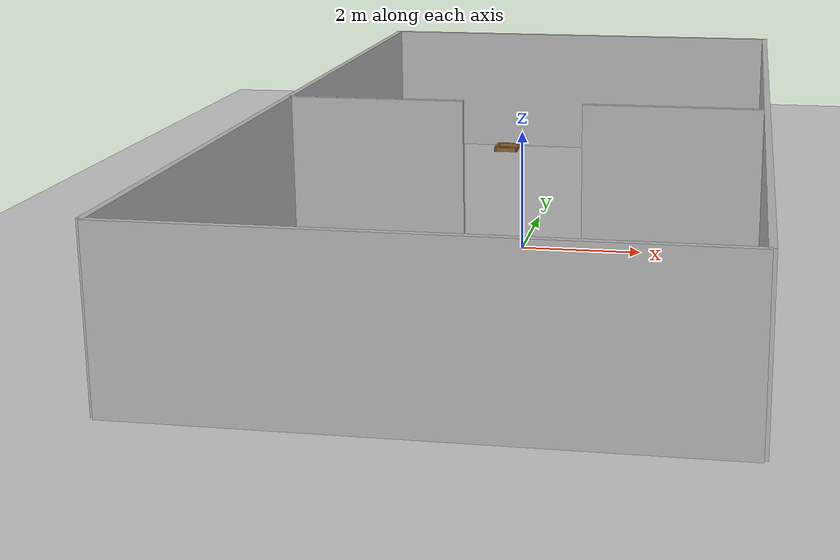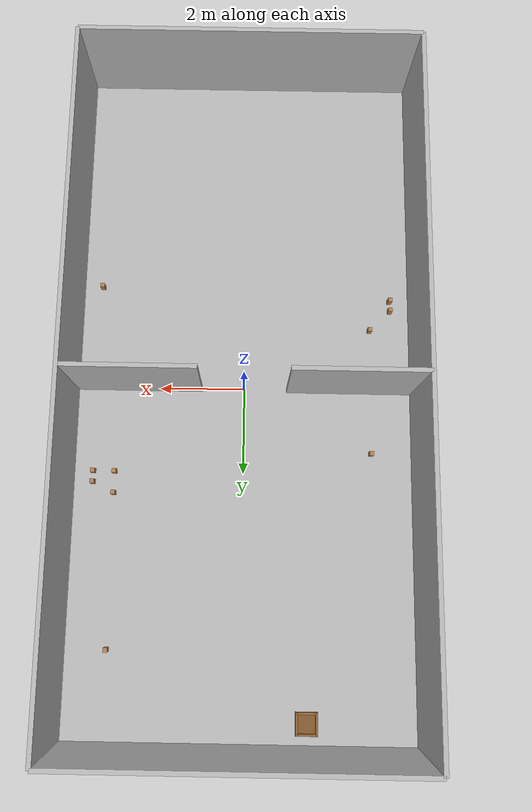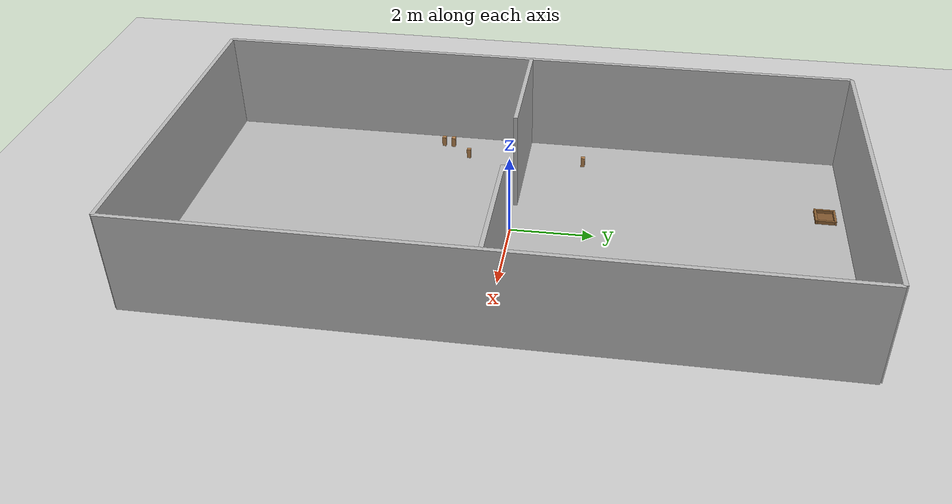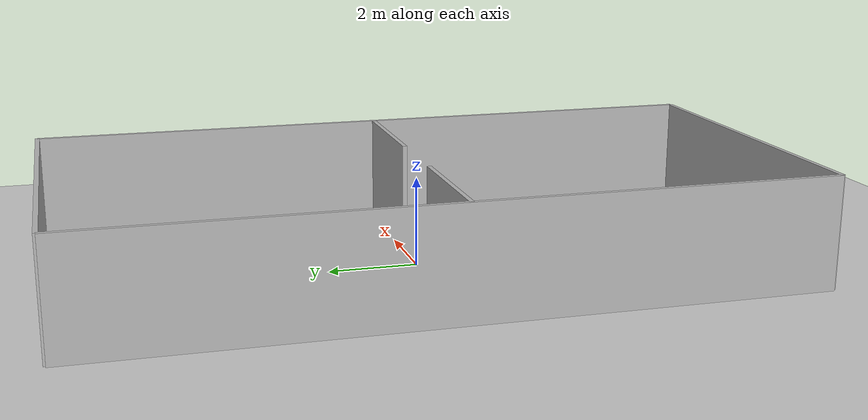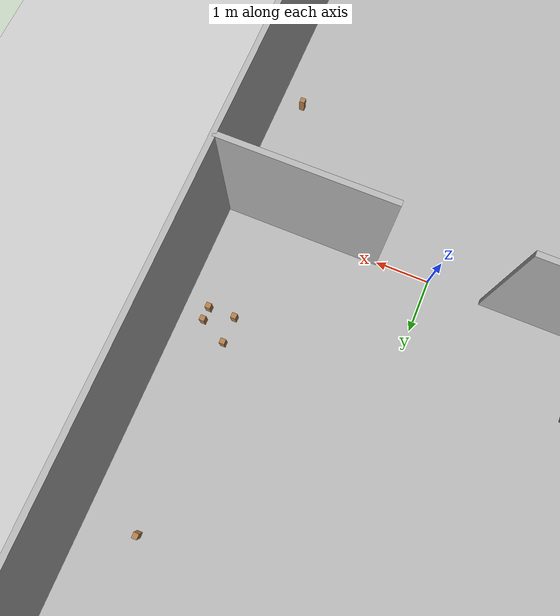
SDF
<sdf version="1.6">
 <world name="sensor_empty">
  <physics name="1ms" type="ignored">
   <max_step_size>0.001</max_step_size>
   <real_time_factor>1.0</real_time_factor>
  </physics>
  <include><name>obs2</name><uri>model://Woodcube10cm</uri><pose>3.0 2.5 0.0 0 0 1.57</pose></include>
  <include><name>obs3</name><uri>model://Woodcube10cm</uri><pose>3.5 -2.5 0.0 0 0 1.57</pose></include>
  <include><name>obs4</name><uri>model://Woodcube10cm</uri><pose>-3.0 1.5 0.0 0 0 1.57</pose></include>
  <include><name>obs5</name><uri>model://Woodcube10cm</uri><pose>-3.0 -1.5 0.0 0 0 1.57</pose></include>
  <include><name>obs6</name><uri>model://Woodcube10cm</uri><pose>3.0 6.0 0.0 0 0 1.57</pose></include>
  <include><name>obs7</name><uri>model://Woodcube10cm</uri><pose>3.0 2.0 0.0 0 0 1.57</pose></include>
  <include><name>obs8</name><uri>model://Woodcube10cm</uri><pose>3.5 2.0 0.0 0 0 1.57</pose></include>
  <include><name>obs9</name><uri>model://Woodcube10cm</uri><pose>3.5 2.25 0.0 0 0 1.57</pose></include>
  <include><name>obs10</name><uri>model://Woodcube10cm</uri><pose>-3.5 -2.0 0.0 0 0 1.57</pose></include>
  <include><name>obs11</name><uri>model://Woodcube10cm</uri><pose>-3.5 -2.25 0.0 0 0 1.57</pose></include>
  <model name="openbox_wall1">
   <static>true</static>
   <link name="link">
    <collision name="collision"><geometry><box><size>0.5 0.05 0.1</size></box></geometry></collision>
    <visual name="visual">
     <geometry><box><size>0.5 0.05 0.1</size></box></geometry>
     <material><ambient>0.55 0.38 0.20 1</ambient><diffuse>0.55 0.38 0.20 1</diffuse></material>
    </visual>
   </link>
   <pose>-1.5 7.725 0.05 0 0 0</pose>
  </model>
  <model name="openbox_wall2">
   <static>true</static>
   <link name="link">
    <collision name="collision"><geometry><box><size>0.5 0.05 0.1</size></box></geometry></collision>
    <visual name="visual">
     <geometry><box><size>0.5 0.05 0.1</size></box></geometry>
     <material><ambient>0.55 0.38 0.20 1</ambient><diffuse>0.55 0.38 0.20 1</diffuse></material>
    </visual>
   </link>
   <pose>-1.5 7.275 0.05 0 0 0</pose>
  </model>
  <model name="openbox_wall3">
   <static>true</static>
   <link name="link">
    <collision name="collision"><geometry><box><size>0.05 0.5 0.1</size></box></geometry></collision>
    <visual name="visual">
     <geometry><box><size>0.05 0.5 0.1</size></box></geometry>
     <material><ambient>0.55 0.38 0.20 1</ambient><diffuse>0.55 0.38 0.20 1</diffuse></material>
    </visual>
   </link>
   <pose>-1.725 7.5 0.05 0 0 0</pose>
  </model>
  <model name="openbox_wall4">
   <static>true</static>
   <link name="link">
    <collision name="collision"><geometry><box><size>0.05 0.5 0.1</size></box></geometry></collision>
    <visual name="visual">
     <geometry><box><size>0.05 0.5 0.1</size></box></geometry>
     <material><ambient>0.55 0.38 0.20 1</ambient><diffuse>0.55 0.38 0.20 1</diffuse></material>
    </visual>
   </link>
   <pose>-1.275 7.5 0.05 0 0 0</pose>
  </model>
  <model name="openbox_bottom">
   <static>true</static>
   <link name="link">
    <collision name="collision"><geometry><box><size>0.4 0.4 0.02</size></box></geometry></collision>
    <visual name="visual">
     <geometry><box><size>0.4 0.4 0.02</size></box></geometry>
     <material><ambient>0.50 0.34 0.18 1</ambient><diffuse>0.50 0.34 0.18 1</diffuse></material>
    </visual>
   </link>
   <pose>-1.5 7.5 0.01 0 0 0</pose>
  </model>
  <model name="floor">
   <static>true</static>
   <link name="link">
    <collision name="collision">
     <geometry><box><size>8 16 0.01</size></box></geometry>
     <surface><friction><ode><mu>2.0</mu><mu2>1.6</mu2></ode></friction></surface>
    </collision>
    <visual name="visual"><geometry><box><size>8 16 0.01</size></box></geometry></visual>
   </link>
  </model>
  <model name="wall_north">
   <static>true</static>
   <link name="link">
    <collision name="collision"><geometry><box><size>8 0.1 2.5</size></box></geometry></collision>
    <visual name="visual"><geometry><box><size>8 0.1 2.5</size></box></geometry></visual>
   </link>
   <pose>0 8 1.25 0 0 0</pose>
  </model>
  <model name="wall_south">
   <static>true</static>
   <link name="link">
    <collision name="collision"><geometry><box><size>8 0.1 2.5</size></box></geometry></collision>
    <visual name="visual"><geometry><box><size>8 0.1 2.5</size></box></geometry></visual>
   </link>
   <pose>0 -8 1.25 0 0 0</pose>
  </model>
  <model name="wall_east">
   <static>true</static>
   <link name="link">
    <collision name="collision"><geometry><box><size>0.1 16 2.5</size></box></geometry></collision>
    <visual name="visual"><geometry><box><size>0.1 16 2.5</size></box></geometry></visual>
   </link>
   <pose>4 0 1.25 0 0 0</pose>
  </model>
  <model name="wall_west">
   <static>true</static>
   <link name="link">
    <collision name="collision"><geometry><box><size>0.1 16 2.5</size></box></geometry></collision>
    <visual name="visual"><geometry><box><size>0.1 16 2.5</size></box></geometry></visual>
   </link>
   <pose>-4 0 1.25 0 0 0</pose>
  </model>
  <model name="mid_div_1">
   <static>true</static>
   <link name="link">
    <collision name="collision"><geometry><box><size>3.0 0.1 2.5</size></box></geometry></collision>
    <visual name="visual"><geometry><box><size>3.0 0.1 2.5</size></box></geometry></visual>
   </link>
   <pose>2.5 0.0 1.25 0 0 0</pose>
  </model>
  <model name="mid_div_2">
   <static>true</static>
   <link name="link">
    <collision name="collision"><geometry><box><size>3.0 0.1 2.5</size></box></geometry></collision>
    <visual name="visual"><geometry><box><size>3.0 0.1 2.5</size></box></geometry></visual>
   </link>
   <pose>-2.5 0.0 1.25 0 0 0</pose>
  </model>
  <plugin filename="gz-sim-physics-system" name="gz::sim::systems::Physics"/>
  <plugin filename="gz-sim-sensors-system" name="gz::sim::systems::Sensors">
   <render_engine>ogre2</render_engine>
  </plugin>
  <plugin filename="gz-sim-imu-system" name="gz::sim::systems::Imu"/>
  <plugin filename="gz-sim-user-commands-system" name="gz::sim::systems::UserCommands"/>
  <plugin filename="gz-sim-scene-broadcaster-system" name="gz::sim::systems::SceneBroadcaster"/>
  <plugin filename="gz-sim-contact-system" name="gz::sim::systems::Contact"/>
  <light type="directional" name="sun">
   <pose>0 0 10 0 0 0</pose>
   <diffuse>0.8 0.8 0.8 1</diffuse>
   <specular>0.2 0.2 0.2 1</specular>
   <attenuation>
    <range>1000</range>
    <constant>0.9</constant>
    <linear>0.01</linear>
    <quadratic>0.001</quadratic>
   </attenuation>
   <direction>-0.5 0.1 -0.9</direction>
  </light>
  <model name="ground_plane">
   <static>true</static>
   <link name="link">
    <collision name="collision">
     <geometry><plane><normal>0 0 1</normal><size>100 100</size></plane></geometry>
    </collision>
    <visual name="visual">
     <geometry><plane><normal>0 0 1</normal><size>100 100</size></plane></geometry>
     <material>
      <ambient>0.8 0.8 0.8 1</ambient>
      <diffuse>0.8 0.8 0.8 1</diffuse>
      <specular>0.8 0.8 0.8 1</specular>
     </material>
    </visual>
   </link>
  </model>
 </world>
</sdf>

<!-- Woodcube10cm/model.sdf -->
<sdf version="1.5">
  <model name="wood_cube_10cm">
    <static>false</static>
    <link name="link">
      <pose>0 0 0.05 0 0 0</pose>
      <inertial>
        <mass>0.5167</mass>
        <inertia>
          <ixx>0.0008611666666666669</ixx>
          <ixy>0</ixy>
          <ixz>0</ixz>
          <iyy>0.0008611666666666669</iyy>
          <iyz>0</iyz>
          <izz>0.0008611666666666669</izz>
        </inertia>
      </inertial>

      <collision name="collision">
        <geometry>
          <box>
            <size>0.1 0.1 0.42</size>
          </box>
        </geometry>
        <surface>
          <contact>
            <!-- Red Pine coefficients for longitudinal axis of the wood
                 according to:
                 http://www.fpl.fs.fed.us/documnts/fplgtr/fplgtr113/ch04.pdf -->
            <poissons_ratio>0.347</poissons_ratio>
            <elastic_modulus>8.8e+09</elastic_modulus>
            <ode>
              <kp>100000</kp>
              <kd>100</kd>
              <max_vel>100.0</max_vel>
              <min_depth>0.001</min_depth>
            </ode>
          </contact>
          <friction>
            <torsional>
              <coefficient>1.0</coefficient>
              <use_patch_radius>0</use_patch_radius>
              <surface_radius>0.01</surface_radius>
            </torsional>
          </friction>
        </surface>
      </collision>

      <visual name="visual">
        <geometry>
          <box>
            <size>0.1 0.1 0.42</size>
          </box>
        </geometry>
        <material>
          <script>
            <uri>file://media/materials/scripts/gazebo.material</uri>
            <name>Gazebo/Wood</name>
          </script>
        </material>
      </visual>

    </link>
  </model>
</sdf>
